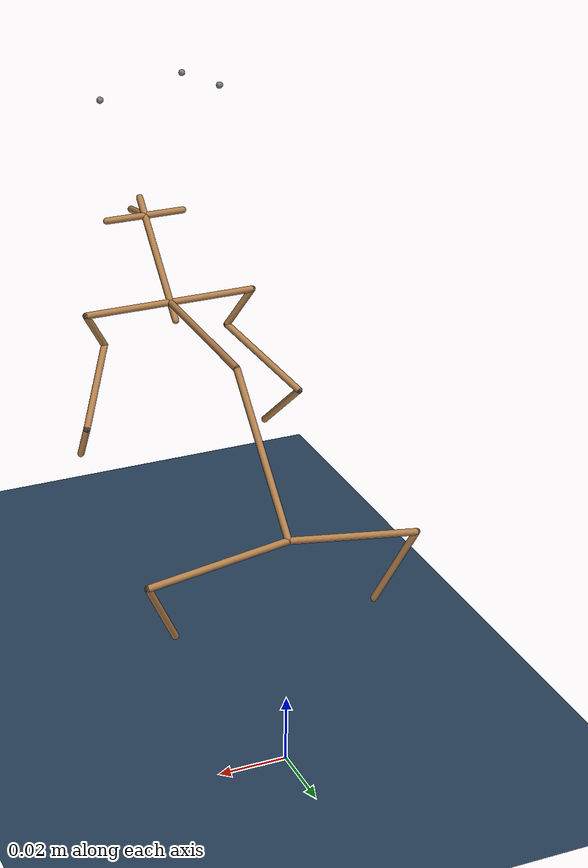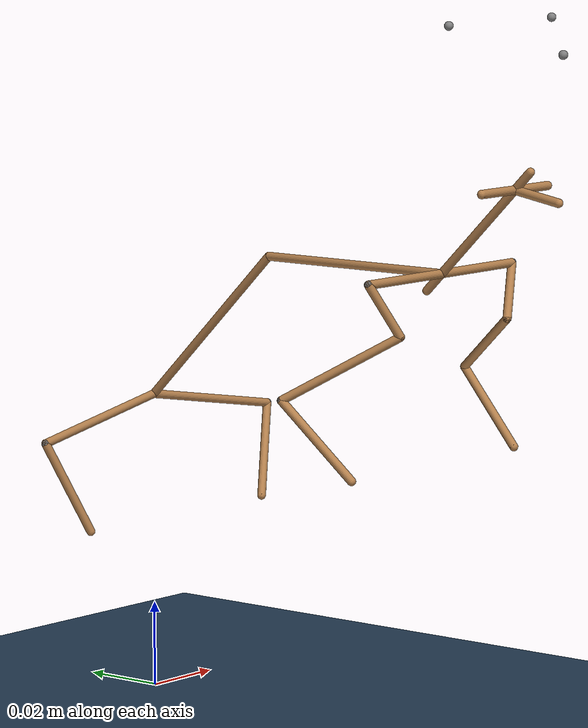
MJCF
<mujoco model="simple_rodent">
  <include file="./common/skybox.xml"/>
  <include file="./common/visual.xml"/>
  <include file="./common/materials.xml"/>

  <compiler angle="degree"/>
  <statistic extent="0.25" center="0 0 0" meanmass="1" meaninertia="1"/>

  <visual>
    <global offheight='1000' offwidth='1000'/>
  </visual>

  <keyframe>
    <key qpos='-0.0494968 0.00485671 0.0354287 -0.33323 0.315702 0.574387 0.677768 0.309315 0.104031 0.129873 -0.055938 -0.0370653 -0.0200894 0.0466742 0.0348514 -0.110522 0.158882 -0.174582 -0.0584494 0.0594166 0.0695407 0.245439 0.260268 0.339394 0.0667787 -0.20033 -0.0583897 0.299598 0.19662 0.259405 -0.0488287 0.218561 0.0436309'/>
  </keyframe>

  <option>
    <flag constraint="enable"/>
  </option>

  <default class="main">
    <joint type="hinge" limited="true" solimplimit="0 0.99 0.01" stiffness="0.1" armature=".1e-3" damping=".01" range="-180 180"/>
    <geom size="0.03 .01 0" conaffinity="1" condim="3" friction="0.7 0.005 0.0001" solref="0.015 1" solimp="0.99 0.99 0.003"/>
    <general ctrllimited="true" ctrlrange="-1 1"/>
    <default class="rodent">
      <geom type="capsule" material="self" group="2" size=".001 .001"/>
    </default>
    <default class="mocap">
      <tendon rgba="0.5 0.5 0.5 0" width="0.0005" limited="false" solimplimit="1 5 0.005 0.1 1" solreflimit="0.02 1" springlength="0.00001" stiffness="100" range="0 0.05" frictionloss="10000" damping="1"/>
    </default>
  </default>

  <tendon>
		<spatial name="HeadFT" class="mocap">
      <site site="HeadF"/> <site site="Skull1"/>
    </spatial>
    <spatial name="HeadLT" class="mocap">
      <site site="HeadL"/> <site site="Skull2"/>
    </spatial>
    <spatial name="HeadBT" class="mocap">
      <site site="HeadB"/> <site site="Skull3"/>
    </spatial>
    <spatial name="SpineFT" class="mocap">
      <site site="SpineF"/> <site site="FSpine"/>
    </spatial>
    <spatial name="SpineMT" class="mocap">
      <site site="SpineM"/> <site site="MSpine"/>
    </spatial>
    <spatial name="SpineLT" class="mocap">
      <site site="SpineL"/> <site site="SpineR"/>
    </spatial>
    <spatial name="HipLT" class="mocap">
      <site site="HipL"/> <site site="LHip"/>
    </spatial>
    <spatial name="HipRT" class="mocap">
      <site site="HipR"/> <site site="RHip"/>
    </spatial>
    <spatial name="ElbowLT" class="mocap">
      <site site="ElbowL"/> <site site="LHumerus"/>
    </spatial>
    <spatial name="ArmLT" class="mocap">
      <site site="ArmL"/> <site site="LArm"/>
    </spatial>
    <spatial name="ShoulderLT" class="mocap">
      <site site="ShoulderL"/> <site site="LScap"/>
    </spatial>
    <spatial name="ShoulderRT" class="mocap">
      <site site="ShoulderR"/> <site site="RScap"/>
    </spatial>
    <spatial name="ElbowRT" class="mocap">
      <site site="ElbowR"/> <site site="RHumerus"/>
    </spatial>
    <spatial name="ArmRT" class="mocap">
      <site site="ArmR"/> <site site="RArm"/>
    </spatial>
    <spatial name="KneeRT" class="mocap">
      <site site="KneeR"/> <site site="RFemur"/>
    </spatial>
    <spatial name="KneeLT" class="mocap">
      <site site="KneeL"/> <site site="LFemur"/>
    </spatial>
    <spatial name="ShinLT" class="mocap">
      <site site="ShinL"/> <site site="LShin"/>
    </spatial>
    <spatial name="ShinRT" class="mocap">
      <site site="ShinR"/> <site site="RShin"/>
    </spatial>
	</tendon>

  <worldbody>
    <light name="tracking_light" pos="0 0 7" dir="0 0 -1" mode="trackcom"/>
    <camera name="back" pos="0 3 1.4" xyaxes="-1 0 0 0 -1 2" mode="trackcom"/>
    <camera name="side" pos="-3 0 1.4" xyaxes="0 -1 0 1 0 2" mode="trackcom"/>
    <camera name="front_side" pos="-0.2 -0.25 0.15" xyaxes="0.5 -0.5 0 0.1 0.1 1"  mode="trackcom"/>
    <geom name="floor" type="plane" size="1 1 .1" material="grid"/>

    <body name="HeadF" mocap="true" pos="0.0889786541697217	-0.0230018299309882	0.0476424388885498">
      <site name="HeadF" type="sphere" size="0.001" pos="0 0 0" rgba="0 0 1 0"/>
    </body>
    <body name="HeadB" mocap="true" pos="0.0781558094744516	-0.0226266733980749	0.0615893306732178">
      <site name="HeadB" type="sphere" size="0.001" pos="0 0 0" rgba="0 0 1 0"/>
    </body>
    <body name="HeadL" mocap="true" pos="0.0840681829491366	0.00535135276388726	0.0672620410919189">
      <site name="HeadL" type="sphere" size="0.001" pos="0 0 0" rgba="0 0 1 0"/>
    </body>
    <body name="SpineF" mocap="true" pos="0.0336108354923585	-2.78810073398781e-09	0.0577284069061279">
      <site name="SpineF" type="sphere" size="0.001" pos="0 0 0" rgba="1 0 0 0"/>
    </body>
    <body name="SpineM" mocap="true" pos="0	0	0.0772419834136963">
      <site name="SpineM" type="sphere" size="0.001" pos="0 0 0" rgba="1 0 0 0"/>
    </body>
    <body name="SpineL" mocap="true" pos="-0.0530881705114818	0.00437902504728756	0.0583622074127197">
      <site name="SpineL" type="sphere" size="0.001" pos="0 0 0" rgba="1 0 0 0"/>
    </body>
    <body name="Offset1" mocap="true" pos="0.0166139193266304	0.0232478826248549	0.0634551258087158">
      <site name="Offset1" type="sphere" size="0.001" pos="0 0 0" rgba="0.75 0 0.5 0"/>
    </body>
    <body name="Offset2" mocap="true" pos="-0.0203860386158416	0.0284315698439373	0.0695728626251221">
      <site name="Offset2" type="sphere" size="0.001" pos="0 0 0" rgba="0.75 0 0.5 0"/>
    </body>
    <body name="HipL" mocap="true" pos="-0.0574960044850230	0.0256309102518966	0.0438745822906494">
      <site name="HipL" type="sphere" size="0.001" pos="0 0 0" rgba="0 0.75 0.75 0"/>
    </body>
    <body name="HipR" mocap="true" pos="-0.0481657994989117	-0.0189056833780880	0.0317840766906738">
      <site name="HipR" type="sphere" size="0.001" pos="0 0 0" rgba="0 1 0 0"/>
    </body>
    <body name="ElbowL" mocap="true" pos="0.0338847205799275	0.0229856683692743	0.00463577902317047">
      <site name="ElbowL" type="sphere" size="0.001" pos="0 0 0" rgba="1 0.75 0 0"/>
    </body>
    <body name="ArmL" mocap="true" pos="0.0377576429088255	0.0218747934639910	0.00164912891387939">
      <site name="ArmL" type="sphere" size="0.001" pos="0 0 0" rgba="1 0.75 0 0"/>
    </body>
    <body name="ShoulderL" mocap="true" pos="0.0347763772824717	0.0205949311575841	0.0521760311126709">
      <site name="ShoulderL" type="sphere" size="0.001" pos="0 0 0" rgba="1 0.75 0 0"/>
    </body>
    <body name="ShoulderR" mocap="true" pos="0.0292484607001552	-0.0152202585009388	0.0414274501800537">
      <site name="ShoulderR" type="sphere" size="0.001" pos="0 0 0" rgba="1 1 1 0"/>
    </body>
    <body name="ElbowR" mocap="true" pos="0.0276493569026909	-0.0134403114300899	0.00436700439453125">
      <site name="ElbowR" type="sphere" size="0.001" pos="0 0 0" rgba="1 1 1 0"/>
    </body>
    <body name="ArmR" mocap="true" pos="0.0323680084494787	-0.0119576342470901	0">
      <site name="ArmR" type="sphere" size="0.001" pos="0 0 0" rgba="1 1 1 0"/>
    </body>
    <body name="KneeR" mocap="true" pos="-0.0300852721940713	-0.0229741947020289	0.0240617675781250">
      <site name="KneeR" type="sphere" size="0.001" pos="0 0 0" rgba="0 1 0 0"/>
    </body>
    <body name="KneeL" mocap="true" pos="-0.0392087496326259	0.0396336424951963	0.0363965797424316">
      <site name="KneeL" type="sphere" size="0.001" pos="0 0 0" rgba="0 0.75 0.75 0"/>
    </body>
    <body name="ShinL" mocap="true" pos="-0.0418206697166656	0.0342867505675419	0.0147190299034119">
      <site name="ShinL" type="sphere" size="0.001" pos="0 0 0" rgba="0 0.75 0.75 0"/>
    </body>
    <body name="ShinR" mocap="true" pos="-0.0289246132551527	-0.0201304947966892	0.00437880039215087">
      <site name="ShinR" type="sphere" size="0.001" pos="0 0 0" rgba="0 1 0 0"/>
    </body>

    <body name="root" pos="0 0 70e-3" euler="135 90 0" childclass="rodent">
      <freejoint name="SpineR"/>
      <camera name="bodycam" pos="0 .3 .1" xyaxes="-1 0 0 0 1 0" fovy="80"/>
      <body name="SpineR">
        <body name="RFemur" pos="0 0 0" euler="-90 -30 10">
          <joint name="RFemur_rx" axis="1 0 0"/>
          <joint name="RFemur_ry" axis="0 1 0"/>
          <joint name="RFemur_rz" axis="0 0 1"/>
          <geom name="RFemur" size="1e-3 20e-3" pos="0 20e-3 0" euler="90 0 0"/>
          <site name="RHip" size="1e-3 20e-3" pos="0 10e-3 0" euler="90 0 0"/>
          <site name="RFemur" size="1e-3 20e-3" pos="0 40e-3 0" euler="90 0 0"/>
          <body name="RShin" pos="0 40e-3 0" euler="10 0 -75">
            <joint name="RShin" axis="1 0 0"/>
            <geom name="RShin" pos="0 -12e-3 0" size=".001 12e-3" euler="90 0 0"/>
            <site name="RShin" pos="0 -12e-3 0" size=".001 12e-3" euler="90 0 0"/>
          </body>
        </body>
        <body name="LFemur" pos="0 0 0" euler="90 30 10">
          <joint name="LFemur_rx" axis="1 0 0"/>
          <joint name="LFemur_ry" axis="0 1 0"/>
          <joint name="LFemur_rz" axis="0 0 1"/>
          <geom name="LFemur" size="1e-3 20e-3" pos="0 20e-3 0" euler="90 0 0"/>
          <site name="LFemur" size="1e-3 20e-3" pos="0 40e-3 0" euler="90 0 0"/>
          <site name="LHip" size="1e-3 20e-3" pos="0 10e-3 0" euler="90 0 0"/>
          <body name="LShin" pos="0 40e-3 0" euler="10 0 -75">
            <joint name="LShin"/>
            <geom name="LShin" pos="0 -12e-3 0" size=".001 12e-3" euler="90 0 0"/>
            <site name="LShin" pos="0 -12e-3 0" size=".001 12e-3" euler="90 0 0"/>
          </body>
        </body>
        <geom name="SpineR" size="1e-3 25e-3" pos="0 25e-3 0"  euler="90 0 0"/>
        <site name="SpineR" size="1e-3 25e-3" pos="0 5e-3 0"  euler="90 0 0"/>
        <body name="MSpine" pos="0 50e-3 0" euler="-180 0 135">
          <joint name="MSpine"/>
          <geom name="MSpine" size="1e-3 25e-3" pos="0 25e-3 0"  euler="90 0 0"/>
          <site name="MSpine" size="1e-3 25e-3" pos="0 5e-3 0"  euler="90 0 0"/>
          <site name="FSpine" size="1e-3 20e-3" pos="0 50e-3 0"  euler="45 0 0"/>
          <body name="FSpine" pos="0 50e-3 0" euler="-90 -90 90">
            <joint name="FSpine_rx" axis="1 0 0"/>
            <joint name="FSpine_rz" axis="0 0 1"/>
            <geom name="FSpine" size="1e-3 20e-3" pos="0 -10e-3 10e-3"  euler="45 0 0"/>
            <body name="Skull1" pos="0 -20e-3 20e-3" euler="10 0 0">
              <joint name="Skull1"/>
              <geom name="Skull1" size=".001 6e-3" pos="0 -6e-3 0" euler="90 0 0"/>
              <site name="Skull1" size=".001 6e-3" pos="-0.024 -0.024 0.037" euler="90 0 0"/>
            </body>
            <body name="Skull2" pos="0 -20e-3 20e-3" euler="180 0 90">
              <joint name="Skull2"/>
              <geom name="Skull2" size=".001 6e-3" pos="0 -6e-3 0" euler="90 0 0"/>
              <site name="Skull2" size=".001 6e-3" pos="0 -0.013 -0.037" euler="90 0 0"/>
            </body>
            <body name="Skull3" pos="0 -20e-3 20e-3" euler="0 0 -90">
              <joint name="Skull3"/>
              <geom name="Skull3" size=".001 6e-3" pos="0 -6e-3 0" euler="90 0 0"/>
              <site name="Skull3" size=".001 6e-3" pos="0 -0.024 0.037" euler="90 0 0"/>
            </body>
          </body>
          <body name="LScap" pos="0 50e-3 0" euler="90 -30 -90">
            <joint name="LScap"/>
            <geom name="LScap" size=".001 13e-3" pos="13e-3 0 0" euler="90 90 0"/>
            <site name="LScap" size=".001 13e-3" pos="26e-3 0 0" euler="90 90 0"/>
            <body name="LScap_2" pos="26e-3 0 0" euler="20 -60 70">
              <joint name="LScap_2"/>
              <geom name="LScap_2" size=".001 7e-3" pos="0 7e-3 0" euler="90 0 0"/>
              <body name="LHumerus" pos="0 14e-3 0" euler="0 20 -90">
                <joint name="LHumerus_rz" axis="0 0 1"/>
                <joint name="LHumerus_ry" axis="0 1 0"/>
                <joint name="LHumerus_rx" axis="1 0 0"/>
                <geom name="LHumerus" size=".001 15e-3" pos="0 15e-3 0" euler="90 0 0"/>
                <site name="LHumerus" size=".001 15e-3" pos="0 30e-3 0" euler="90 0 0"/>
                <body name="LArm" pos="0 30e-3 0" euler="0 -30 -75">
                  <joint name="LArm"/>
                  <geom name="LArm" pos="0 -12e-3 0" size=".001 12e-3" euler="90 0 0"/>
                  <site name="LArm" pos="0 -12e-3 0" size=".001 12e-3" euler="90 0 0"/>
                </body>
              </body>
            </body>
          </body>
          <body name="RScap" pos="0 50e-3 0" euler="-90 30 -90">
            <joint name="RScap"/>
            <geom name="RScap" size=".001 13e-3" pos="13e-3 0 0" euler="90 90 0"/>
            <site name="RScap" size=".001 13e-3" pos="26e-3 0 0" euler="90 90 0"/>
            <body name="RScap_2" pos="26e-3 0 0" euler="-20 60 70">
              <joint name="RScap_2"/>
              <geom name="RScap_2" size=".001 7e-3" pos="0 7e-3 0" euler="90 0 0"/>
              <body name="RHumerus" pos="0 14e-3 0" euler="0 -20 -90">
                <joint name="RHumerus_rz" axis="0 0 1"/>
                <joint name="RHumerus_ry" axis="0 1 0"/>
                <joint name="RHumerus_rx" axis="1 0 0"/>
                <geom name="RHumerus" size=".001 15e-3" pos="0 15e-3 0" euler="90 0 0"/>
                <site name="RHumerus" size=".001 15e-3" pos="0 30e-3 0" euler="90 0 0"/>
                <body name="RArm" pos="0 30e-3 0" euler="0 30 -75">
                  <joint name="RArm"/>
                  <geom name="RArm" pos="0 -12e-3 0" size=".001 12e-3" euler="90 0 0"/>
                  <site name="RArm" pos="0 -12e-3 0" size=".001 12e-3" euler="90 0 0"/>
                </body>
              </body>
            </body>
          </body>
        </body>
      </body>
    </body>
  </worldbody>

  <actuator>
  </actuator>

  <sensor>
  </sensor>

</mujoco>

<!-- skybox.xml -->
<mujoco>
    <asset>
        <texture name="skybox" type="skybox" builtin="gradient" rgb1=".4 .6 .8" rgb2="0 0 0"
                 width="800" height="800" mark="random" markrgb="1 1 1"/>
    </asset>
  </mujoco>

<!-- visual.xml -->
<mujoco>
    <visual>
      <headlight ambient=".4 .4 .4" diffuse=".8 .8 .8" specular="0.1 0.1 0.1"/>
      <map znear=".01"/>
      <quality shadowsize="2048"/>
    </visual>
  </mujoco>

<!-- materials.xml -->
<!--
Common textures, colors and materials to be used throughout this suite. Some
materials such as xxx_highlight are activated on occurence of certain events,
for example receiving a positive reward.
-->
<mujoco>
    <asset>
      <texture name="grid" type="2d" builtin="checker" rgb1=".1 .2 .3" rgb2=".2 .3 .4" width="300" height="300" mark="edge" markrgb=".2 .3 .4"/>
      <material name="grid" texture="grid" texrepeat="1 1" texuniform="true" reflectance=".2"/>
      <material name="self" rgba=".7 .5 .3 1"/>
      <material name="self_default" rgba=".7 .5 .3 1"/>
      <material name="self_highlight" rgba="0 .5 .3 1"/>
      <material name="effector" rgba=".7 .4 .2 1"/>
      <material name="effector_default" rgba=".7 .4 .2 1"/>
      <material name="effector_highlight" rgba="0 .5 .3 1"/>
      <material name="decoration" rgba=".3 .5 .7 1"/>
      <material name="eye" rgba="0 .2 1 1"/>
      <material name="target" rgba=".6 .3 .3 1"/>
      <material name="target_default" rgba=".6 .3 .3 1"/>
      <material name="target_highlight" rgba=".6 .3 .3 .4"/>
      <material name="site" rgba=".5 .5 .5 .3"/>
    </asset>
  </mujoco>
